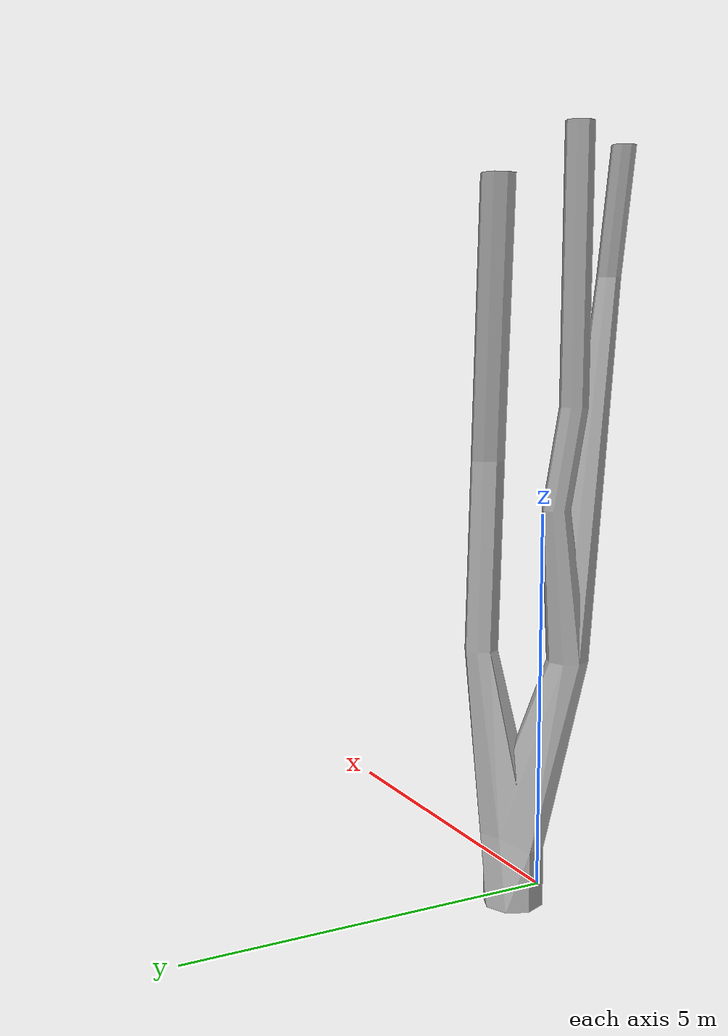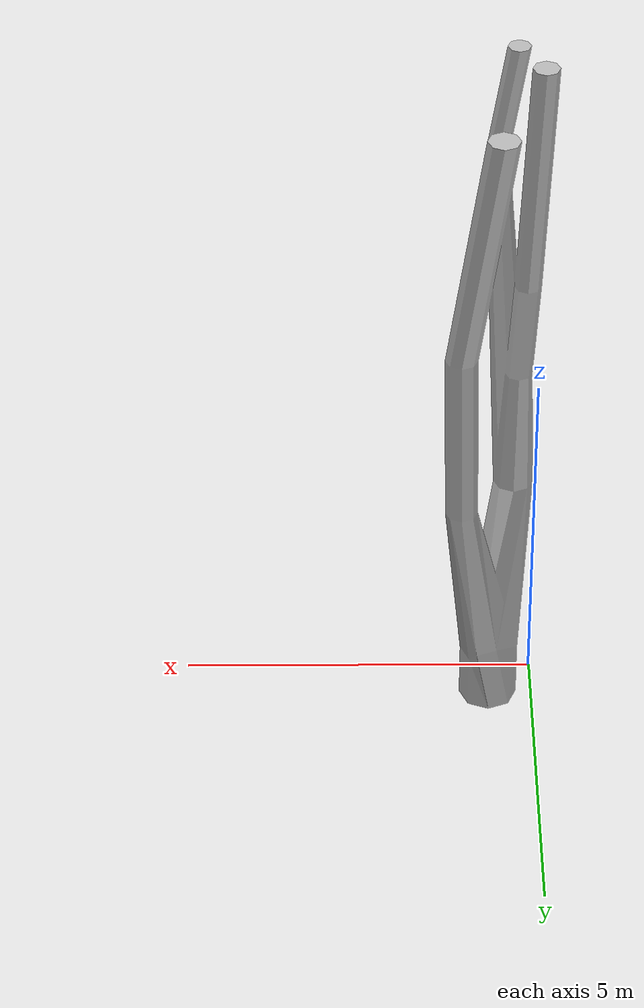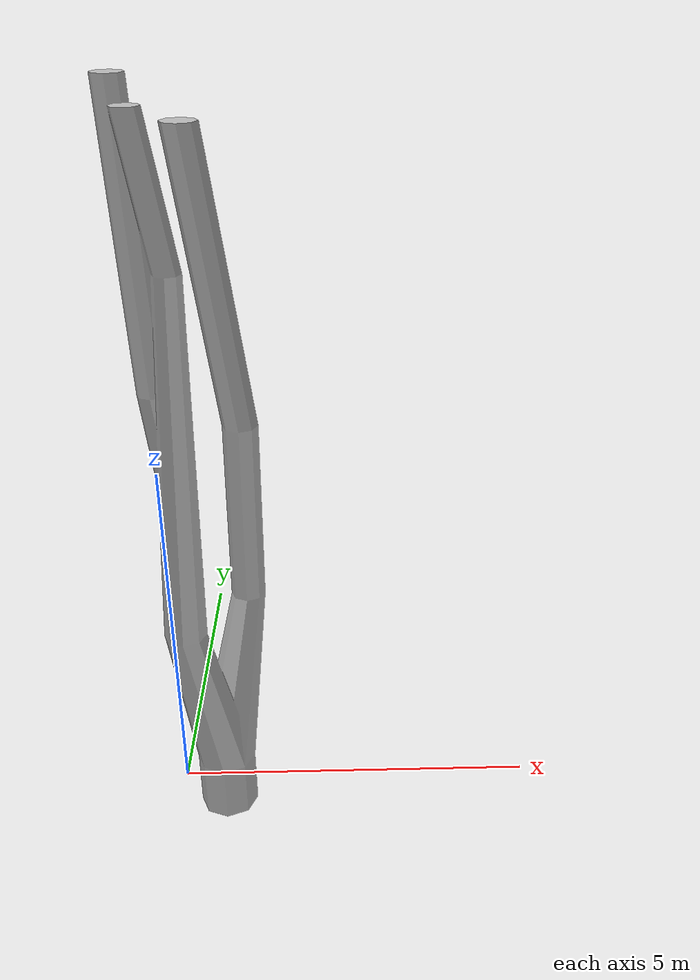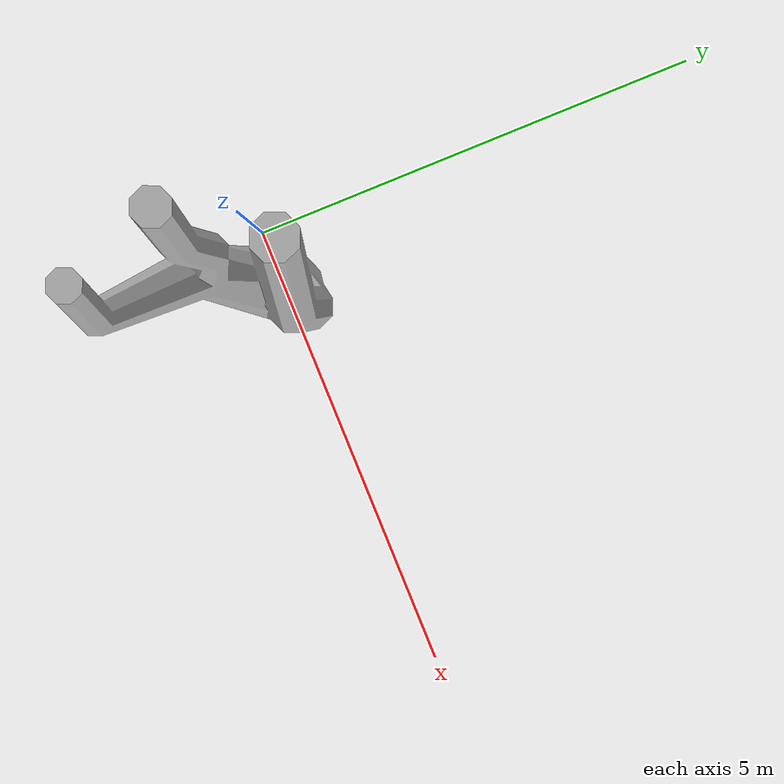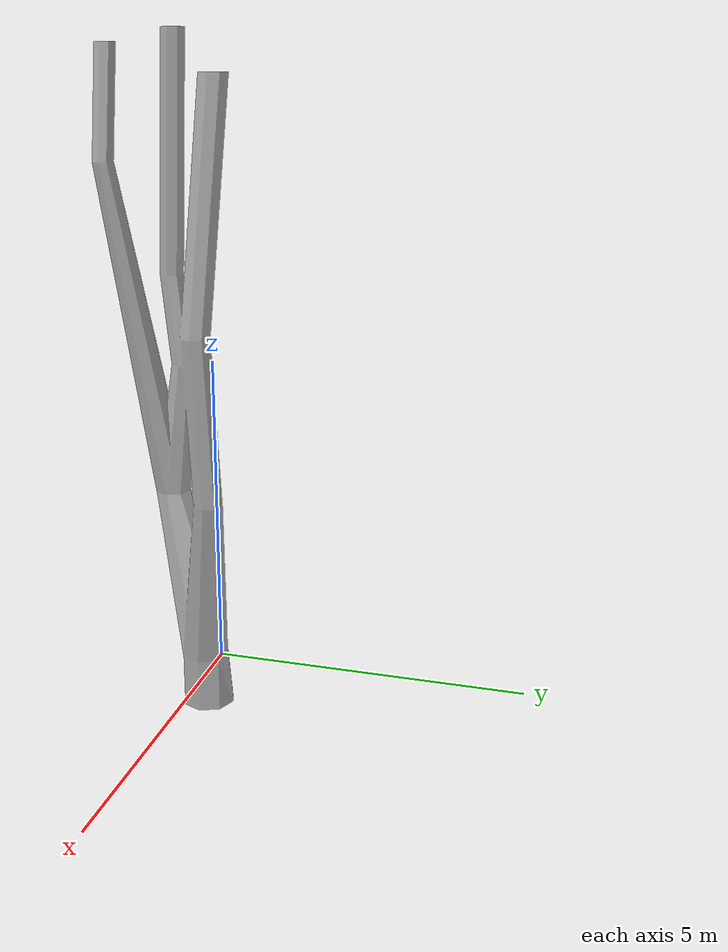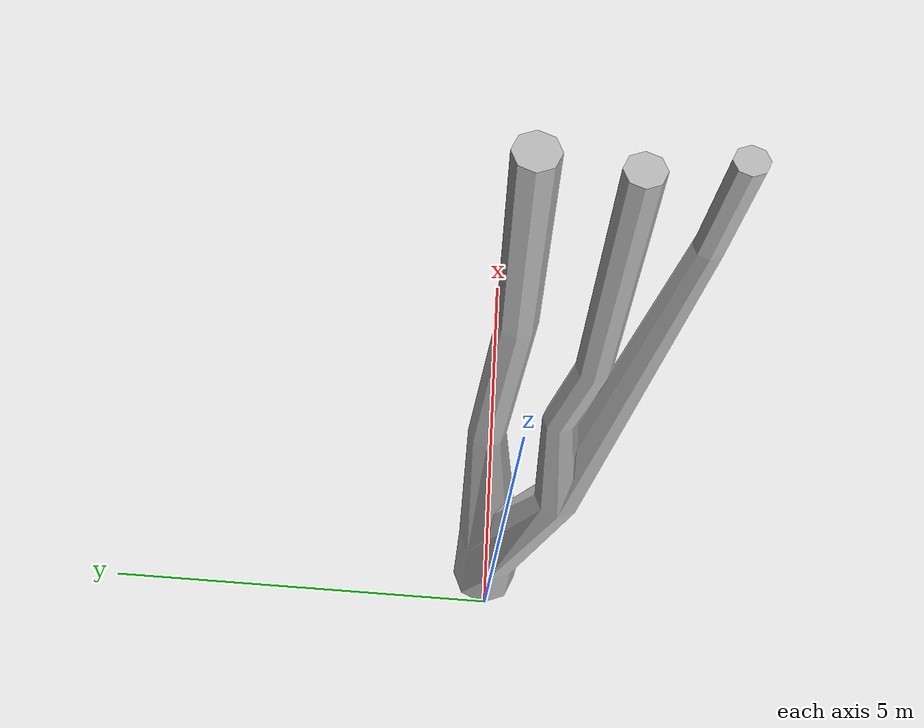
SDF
<?xml version='1.0'?>
<sdf version="1.4">
  <model name="park_tree_4">
    <static>true</static>
    <link name="link">
      <collision name="collision">
        <geometry>
          <mesh>
            <uri>model://park_tree_4/meshes/collision.dae</uri>
          </mesh>
        </geometry>
      </collision>
      <visual name="visual">
        <geometry>
          <mesh>
            <uri>model://park_tree_4/meshes/park_tree_4.dae</uri>
          </mesh>
        </geometry>
      </visual>
    </link>
  </model>
</sdf>
